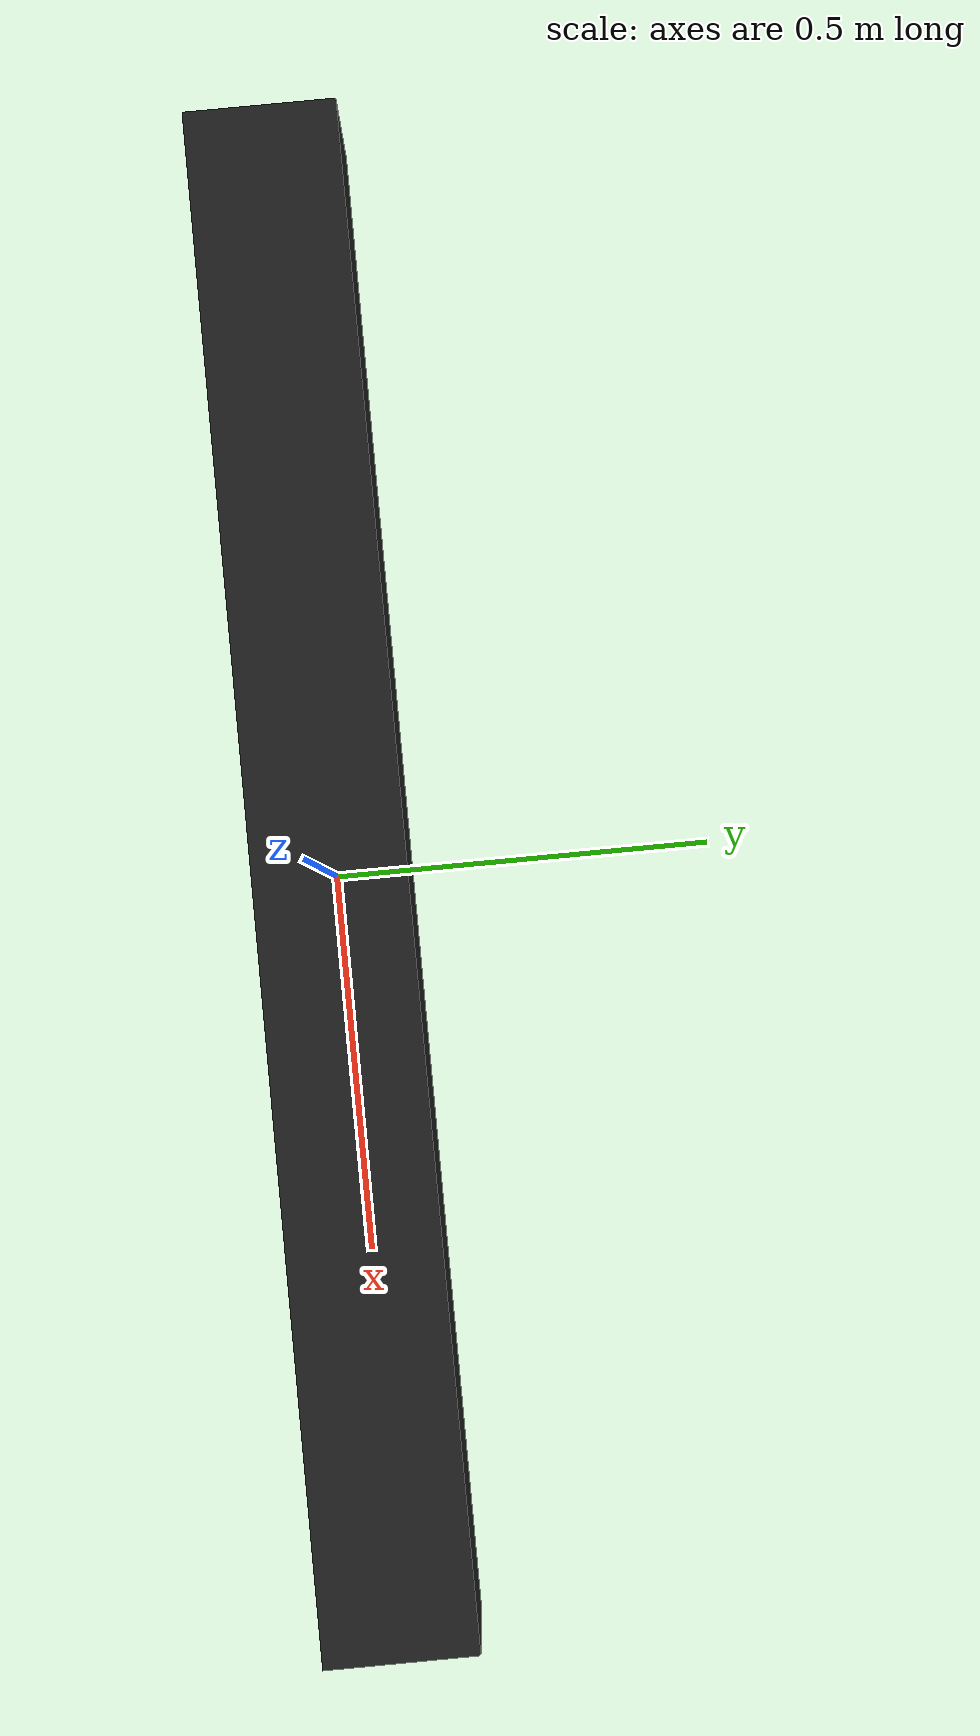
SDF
<?xml version='1.0'?>
<sdf version="1.4">
<model name="Large Black object">
  <pose>0 0 0.04 0 0 0</pose>
  <static>true</static>
    <link name="link">
      <inertial>
        <mass>2</mass>
        <inertia>
          <ixx>0.083</ixx>
          <ixy>0.0</ixy>
          <ixz>0.0</ixz>
          <iyy>0.083</iyy>
          <iyz>0.0</iyz>
          <izz>0.083</izz>
        </inertia>
      </inertial>
      <collision name="collision">
        <geometry>
          <box>
            <size>2 0.2 0.2</size>
          </box>
        </geometry>
      </collision>
      <visual name="visual">
        <geometry>
          <box>
            <size>2 0.2 0.2</size>
          </box>
        </geometry>
        <material>
        	<script>
              <uri>file://media/materials/scripts/gazebo.material</uri>
              <name>Gazebo/Black</name>
            </script>
        </material>
      </visual>
    </link>
  </model>
</sdf>
